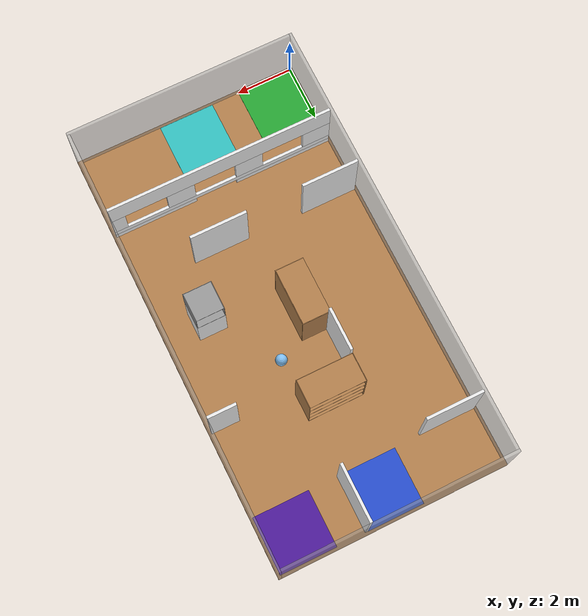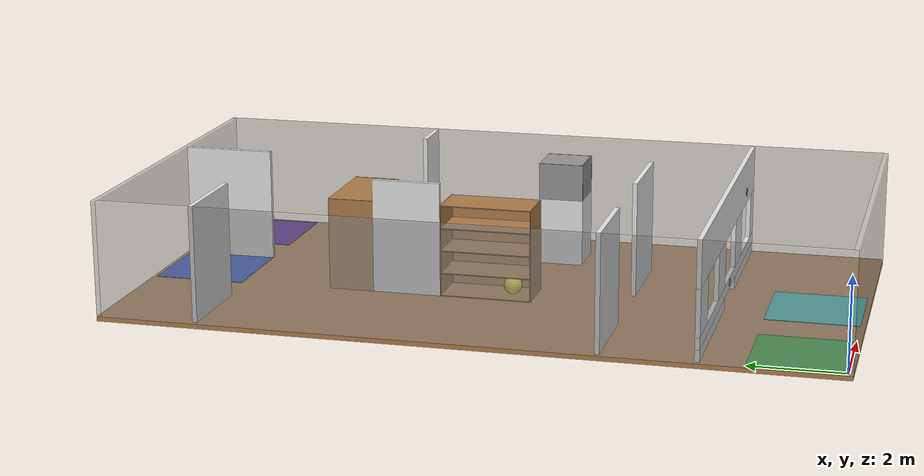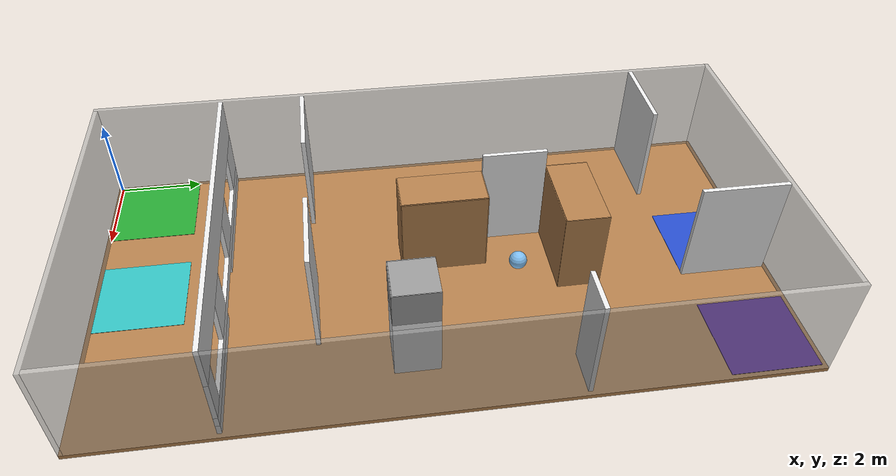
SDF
<sdf version="1.6">
 <world name="default">
  <light name="sun" type="directional">
   <pose>0 0 10 0 -0 0</pose>
   <diffuse>0.8 0.8 0.8 1</diffuse>
   <specular>0.2 0.2 0.2 1</specular>
   <attenuation>
    <range>1000</range>
    <constant>0.9</constant>
    <linear>0.01</linear>
    <quadratic>0.001</quadratic>
   </attenuation>
   <direction>-0.5 0.1 -0.9</direction>
  </light>
  <physics name="default_physics" default="0" type="ode">
   <ode>
    <solver>
     <type>quick</type>
     <iters>10</iters>
     <sor>1.3</sor>
     <use_dynamic_moi_rescaling>0</use_dynamic_moi_rescaling>
    </solver>
    <constraints>
     <cfm>0</cfm>
     <erp>0.2</erp>
     <contact_max_correcting_vel>100</contact_max_correcting_vel>
     <contact_surface_layer>0.001</contact_surface_layer>
    </constraints>
   </ode>
   <max_step_size>0.004</max_step_size>
   <real_time_factor>1</real_time_factor>
   <real_time_update_rate>250</real_time_update_rate>
  </physics>
  <model name="box_1">
   <pose>4.05 -0.05 1.25 0 -0 0</pose>
   <static>1</static>
   <link name="link">
    <collision name="collision"><geometry><box><size>8.1 0.1 2.5</size></box></geometry></collision>
    <visual name="visual">
     <geometry><box><size>8.1 0.1 2.5</size></box></geometry>
     <material>
      <script><name>Gazebo/GreyTransparent</name><uri>file://media/materials/scripts/gazebo.material</uri></script>
     </material>
    </visual>
   </link>
  </model>
  <model name="box_2">
   <pose>8.05 7.8 1.25 0 -0 0</pose>
   <static>1</static>
   <link name="link">
    <collision name="collision"><geometry><box><size>0.1 15.6 2.5</size></box></geometry></collision>
    <visual name="visual">
     <geometry><box><size>0.1 15.6 2.5</size></box></geometry>
     <material>
      <script><name>Gazebo/GreyTransparent</name><uri>file://media/materials/scripts/gazebo.material</uri></script>
     </material>
    </visual>
   </link>
  </model>
  <model name="box_3">
   <pose>3.95 15.55 1.25 0 -0 0</pose>
   <static>1</static>
   <link name="link">
    <collision name="collision"><geometry><box><size>8.1 0.1 2.5</size></box></geometry></collision>
    <visual name="visual">
     <geometry><box><size>8.1 0.1 2.5</size></box></geometry>
     <material>
      <script><name>Gazebo/GreyTransparent</name><uri>file://media/materials/scripts/gazebo.material</uri></script>
     </material>
    </visual>
   </link>
  </model>
  <model name="box_4">
   <pose>-0.05 7.7 1.25 0 -0 0</pose>
   <static>1</static>
   <link name="link">
    <collision name="collision"><geometry><box><size>0.1 15.6 2.5</size></box></geometry></collision>
    <visual name="visual">
     <geometry><box><size>0.1 15.6 2.5</size></box></geometry>
     <material>
      <script><name>Gazebo/GreyTransparent</name><uri>file://media/materials/scripts/gazebo.material</uri></script>
     </material>
    </visual>
   </link>
  </model>
  <model name="box_5">
   <pose>4 7.75 -0.05 0 -0 0</pose>
   <static>1</static>
   <link name="link">
    <collision name="collision"><geometry><box><size>8.2 15.7 0.1</size></box></geometry></collision>
    <visual name="visual">
     <geometry><box><size>8.2 15.7 0.1</size></box></geometry>
     <material>
      <script><name>Gazebo/WoodFloor</name><uri>file://media/materials/scripts/gazebo.material</uri></script>
     </material>
    </visual>
   </link>
  </model>
  <model name="shelf_1">
   <static>1</static>
   <link name="link">
    <collision name="box_1">
     <pose>-0.99 0 1.01 0 -0 0</pose>
     <geometry><box><size>0.02 1 2.02</size></box></geometry>
    </collision>
    <visual name="box_1">
     <pose>-0.99 0 1.01 0 -0 0</pose>
     <geometry><box><size>0.02 1 2.02</size></box></geometry>
     <material>
      <script><name>Gazebo/Wood</name><uri>file://media/materials/scripts/gazebo.material</uri></script>
     </material>
    </visual>
    <collision name="box_2">
     <pose>0.99 0 1.01 0 -0 0</pose>
     <geometry><box><size>0.02 1 2.02</size></box></geometry>
    </collision>
    <visual name="box_2">
     <pose>0.99 0 1.01 0 -0 0</pose>
     <geometry><box><size>0.02 1 2.02</size></box></geometry>
     <material>
      <script><name>Gazebo/Wood</name><uri>file://media/materials/scripts/gazebo.material</uri></script>
     </material>
    </visual>
    <collision name="box_3">
     <pose>0 0.49 1 0 -0 0</pose>
     <geometry><box><size>1.96 0.02 2</size></box></geometry>
    </collision>
    <visual name="box_3">
     <pose>0 0.49 1 0 -0 0</pose>
     <geometry><box><size>1.96 0.02 2</size></box></geometry>
     <material>
      <script><name>Gazebo/Wood</name><uri>file://media/materials/scripts/gazebo.material</uri></script>
     </material>
    </visual>
    <collision name="box_4">
     <pose>0 -0.01 0.01 0 -0 0</pose>
     <geometry><box><size>1.96 0.98 0.02</size></box></geometry>
    </collision>
    <visual name="box_4">
     <pose>0 -0.01 0.01 0 -0 0</pose>
     <geometry><box><size>1.96 0.98 0.02</size></box></geometry>
     <material>
      <script><name>Gazebo/Wood</name><uri>file://media/materials/scripts/gazebo.material</uri></script>
     </material>
    </visual>
    <collision name="box_5">
     <pose>0 -0.01 0.51 0 -0 0</pose>
     <geometry><box><size>1.96 0.98 0.02</size></box></geometry>
    </collision>
    <visual name="box_5">
     <pose>0 -0.01 0.51 0 -0 0</pose>
     <geometry><box><size>1.96 0.98 0.02</size></box></geometry>
     <material>
      <script><name>Gazebo/Wood</name><uri>file://media/materials/scripts/gazebo.material</uri></script>
     </material>
    </visual>
    <collision name="box_6">
     <pose>0 -0.01 1.01 0 -0 0</pose>
     <geometry><box><size>1.96 0.98 0.02</size></box></geometry>
    </collision>
    <visual name="box_6">
     <pose>0 -0.01 1.01 0 -0 0</pose>
     <geometry><box><size>1.96 0.98 0.02</size></box></geometry>
     <material>
      <script><name>Gazebo/Wood</name><uri>file://media/materials/scripts/gazebo.material</uri></script>
     </material>
    </visual>
    <collision name="box_7">
     <pose>0 -0.01 1.51 0 -0 0</pose>
     <geometry><box><size>1.96 0.98 0.02</size></box></geometry>
    </collision>
    <visual name="box_7">
     <pose>0 -0.01 1.51 0 -0 0</pose>
     <geometry><box><size>1.96 0.98 0.02</size></box></geometry>
     <material>
      <script><name>Gazebo/Wood</name><uri>file://media/materials/scripts/gazebo.material</uri></script>
     </material>
    </visual>
    <collision name="box_8">
     <pose>0 -0.01 2.01 0 -0 0</pose>
     <geometry><box><size>1.96 0.98 0.02</size></box></geometry>
    </collision>
    <visual name="box_8">
     <pose>0 -0.01 2.01 0 -0 0</pose>
     <geometry><box><size>1.96 0.98 0.02</size></box></geometry>
     <material>
      <script><name>Gazebo/Wood</name><uri>file://media/materials/scripts/gazebo.material</uri></script>
     </material>
    </visual>
   </link>
   <pose>3.5 8 0 0 0 -1.5708</pose>
  </model>
  <model name="shelf_2">
   <static>1</static>
   <link name="link">
    <collision name="box_1">
     <pose>-0.99 0 1.01 0 -0 0</pose>
     <geometry><box><size>0.02 1 2.02</size></box></geometry>
    </collision>
    <visual name="box_1">
     <pose>-0.99 0 1.01 0 -0 0</pose>
     <geometry><box><size>0.02 1 2.02</size></box></geometry>
     <material>
      <script><name>Gazebo/Wood</name><uri>file://media/materials/scripts/gazebo.material</uri></script>
     </material>
    </visual>
    <collision name="box_2">
     <pose>0.99 0 1.01 0 -0 0</pose>
     <geometry><box><size>0.02 1 2.02</size></box></geometry>
    </collision>
    <visual name="box_2">
     <pose>0.99 0 1.01 0 -0 0</pose>
     <geometry><box><size>0.02 1 2.02</size></box></geometry>
     <material>
      <script><name>Gazebo/Wood</name><uri>file://media/materials/scripts/gazebo.material</uri></script>
     </material>
    </visual>
    <collision name="box_3">
     <pose>0 0.49 1 0 -0 0</pose>
     <geometry><box><size>1.96 0.02 2</size></box></geometry>
    </collision>
    <visual name="box_3">
     <pose>0 0.49 1 0 -0 0</pose>
     <geometry><box><size>1.96 0.02 2</size></box></geometry>
     <material>
      <script><name>Gazebo/Wood</name><uri>file://media/materials/scripts/gazebo.material</uri></script>
     </material>
    </visual>
    <collision name="box_4">
     <pose>0 -0.01 0.01 0 -0 0</pose>
     <geometry><box><size>1.96 0.98 0.02</size></box></geometry>
    </collision>
    <visual name="box_4">
     <pose>0 -0.01 0.01 0 -0 0</pose>
     <geometry><box><size>1.96 0.98 0.02</size></box></geometry>
     <material>
      <script><name>Gazebo/Wood</name><uri>file://media/materials/scripts/gazebo.material</uri></script>
     </material>
    </visual>
    <collision name="box_5">
     <pose>0 -0.01 0.51 0 -0 0</pose>
     <geometry><box><size>1.96 0.98 0.02</size></box></geometry>
    </collision>
    <visual name="box_5">
     <pose>0 -0.01 0.51 0 -0 0</pose>
     <geometry><box><size>1.96 0.98 0.02</size></box></geometry>
     <material>
      <script><name>Gazebo/Wood</name><uri>file://media/materials/scripts/gazebo.material</uri></script>
     </material>
    </visual>
    <collision name="box_6">
     <pose>0 -0.01 1.01 0 -0 0</pose>
     <geometry><box><size>1.96 0.98 0.02</size></box></geometry>
    </collision>
    <visual name="box_6">
     <pose>0 -0.01 1.01 0 -0 0</pose>
     <geometry><box><size>1.96 0.98 0.02</size></box></geometry>
     <material>
      <script><name>Gazebo/Wood</name><uri>file://media/materials/scripts/gazebo.material</uri></script>
     </material>
    </visual>
    <collision name="box_7">
     <pose>0 -0.01 1.51 0 -0 0</pose>
     <geometry><box><size>1.96 0.98 0.02</size></box></geometry>
    </collision>
    <visual name="box_7">
     <pose>0 -0.01 1.51 0 -0 0</pose>
     <geometry><box><size>1.96 0.98 0.02</size></box></geometry>
     <material>
      <script><name>Gazebo/Wood</name><uri>file://media/materials/scripts/gazebo.material</uri></script>
     </material>
    </visual>
    <collision name="box_8">
     <pose>0 -0.01 2.01 0 -0 0</pose>
     <geometry><box><size>1.96 0.98 0.02</size></box></geometry>
    </collision>
    <visual name="box_8">
     <pose>0 -0.01 2.01 0 -0 0</pose>
     <geometry><box><size>1.96 0.98 0.02</size></box></geometry>
     <material>
      <script><name>Gazebo/Wood</name><uri>file://media/materials/scripts/gazebo.material</uri></script>
     </material>
    </visual>
   </link>
   <pose>4 11 0 0 0 -3.14159</pose>
  </model>
  <model name="box_6">
   <pose>1 4.95 1.25 0 -0 0</pose>
   <static>1</static>
   <link name="link">
    <collision name="collision"><geometry><box><size>2 0.1 2.5</size></box></geometry></collision>
    <visual name="visual">
     <geometry><box><size>2 0.1 2.5</size></box></geometry>
     <material>
      <script><name>Gazebo/White</name><uri>file://media/materials/scripts/gazebo.material</uri></script>
     </material>
    </visual>
   </link>
  </model>
  <model name="box_7">
   <pose>5 4.95 1.25 0 -0 0</pose>
   <static>1</static>
   <link name="link">
    <collision name="collision"><geometry><box><size>2 0.1 2.5</size></box></geometry></collision>
    <visual name="visual">
     <geometry><box><size>2 0.1 2.5</size></box></geometry>
     <material>
      <script><name>Gazebo/White</name><uri>file://media/materials/scripts/gazebo.material</uri></script>
     </material>
    </visual>
   </link>
  </model>
  <model name="box_8">
   <pose>3.05 9.75 1.25 0 -0 0</pose>
   <static>1</static>
   <link name="link">
    <collision name="collision"><geometry><box><size>0.1 1.5 2.5</size></box></geometry></collision>
    <visual name="visual">
     <geometry><box><size>0.1 1.5 2.5</size></box></geometry>
     <material>
      <script><name>Gazebo/White</name><uri>file://media/materials/scripts/gazebo.material</uri></script>
     </material>
    </visual>
   </link>
  </model>
  <model name="box_9">
   <pose>1 13.45 1.25 0 -0 0</pose>
   <static>1</static>
   <link name="link">
    <collision name="collision"><geometry><box><size>2 0.1 2.5</size></box></geometry></collision>
    <visual name="visual">
     <geometry><box><size>2 0.1 2.5</size></box></geometry>
     <material>
      <script><name>Gazebo/White</name><uri>file://media/materials/scripts/gazebo.material</uri></script>
     </material>
    </visual>
   </link>
  </model>
  <model name="box_10">
   <pose>7.5 10.45 1.25 0 -0 0</pose>
   <static>1</static>
   <link name="link">
    <collision name="collision"><geometry><box><size>1 0.1 2.5</size></box></geometry></collision>
    <visual name="visual">
     <geometry><box><size>1 0.1 2.5</size></box></geometry>
     <material>
      <script><name>Gazebo/White</name><uri>file://media/materials/scripts/gazebo.material</uri></script>
     </material>
    </visual>
   </link>
  </model>
  <model name="box_11">
   <pose>4.95 14.5 1.25 0 -0 0</pose>
   <static>1</static>
   <link name="link">
    <collision name="collision"><geometry><box><size>0.1 2 2.5</size></box></geometry></collision>
    <visual name="visual">
     <geometry><box><size>0.1 2 2.5</size></box></geometry>
     <material>
      <script><name>Gazebo/White</name><uri>file://media/materials/scripts/gazebo.material</uri></script>
     </material>
    </visual>
   </link>
  </model>
  <model name="box_12">
   <pose>6.5 7 0.75 0 -0 0</pose>
   <static>1</static>
   <link name="link">
    <collision name="collision"><geometry><box><size>1 1 1.5</size></box></geometry></collision>
    <visual name="visual">
     <geometry><box><size>1 1 1.5</size></box></geometry>
     <material>
      <script><name>Gazebo/White</name><uri>file://media/materials/scripts/gazebo.material</uri></script>
     </material>
    </visual>
   </link>
  </model>
  <model name="shelf_3">
   <static>1</static>
   <link name="link">
    <collision name="box_1">
     <pose>-0.49 0 0.41 0 -0 0</pose>
     <geometry><box><size>0.02 1 0.82</size></box></geometry>
    </collision>
    <visual name="box_1">
     <pose>-0.49 0 0.41 0 -0 0</pose>
     <geometry><box><size>0.02 1 0.82</size></box></geometry>
     <material>
      <script><name>Gazebo/Grey</name><uri>file://media/materials/scripts/gazebo.material</uri></script>
     </material>
    </visual>
    <collision name="box_2">
     <pose>0.49 0 0.41 0 -0 0</pose>
     <geometry><box><size>0.02 1 0.82</size></box></geometry>
    </collision>
    <visual name="box_2">
     <pose>0.49 0 0.41 0 -0 0</pose>
     <geometry><box><size>0.02 1 0.82</size></box></geometry>
     <material>
      <script><name>Gazebo/Grey</name><uri>file://media/materials/scripts/gazebo.material</uri></script>
     </material>
    </visual>
    <collision name="box_3">
     <pose>0 0.49 0.4 0 -0 0</pose>
     <geometry><box><size>0.96 0.02 0.8</size></box></geometry>
    </collision>
    <visual name="box_3">
     <pose>0 0.49 0.4 0 -0 0</pose>
     <geometry><box><size>0.96 0.02 0.8</size></box></geometry>
     <material>
      <script><name>Gazebo/Grey</name><uri>file://media/materials/scripts/gazebo.material</uri></script>
     </material>
    </visual>
    <collision name="box_4">
     <pose>0 -0.01 0.01 0 -0 0</pose>
     <geometry><box><size>0.96 0.98 0.02</size></box></geometry>
    </collision>
    <visual name="box_4">
     <pose>0 -0.01 0.01 0 -0 0</pose>
     <geometry><box><size>0.96 0.98 0.02</size></box></geometry>
     <material>
      <script><name>Gazebo/Grey</name><uri>file://media/materials/scripts/gazebo.material</uri></script>
     </material>
    </visual>
    <collision name="box_5">
     <pose>0 -0.01 0.81 0 -0 0</pose>
     <geometry><box><size>0.96 0.98 0.02</size></box></geometry>
    </collision>
    <visual name="box_5">
     <pose>0 -0.01 0.81 0 -0 0</pose>
     <geometry><box><size>0.96 0.98 0.02</size></box></geometry>
     <material>
      <script><name>Gazebo/Grey</name><uri>file://media/materials/scripts/gazebo.material</uri></script>
     </material>
    </visual>
   </link>
   <pose>6.5 7 1.5 0 0 -3.14159</pose>
  </model>
  <model name="box_13">
   <pose>1 1 0.005 0 -0 0</pose>
   <static>1</static>
   <link name="link">
    <collision name="collision"><geometry><box><size>2 2 0.01</size></box></geometry></collision>
    <visual name="visual">
     <geometry><box><size>2 2 0.01</size></box></geometry>
     <material>
      <script><name>Gazebo/Green</name><uri>file://media/materials/scripts/gazebo.material</uri></script>
     </material>
    </visual>
   </link>
  </model>
  <model name="box_14">
   <pose>7 14.5 0.005 0 -0 0</pose>
   <static>1</static>
   <link name="link">
    <collision name="collision"><geometry><box><size>2 2 0.01</size></box></geometry></collision>
    <visual name="visual">
     <geometry><box><size>2 2 0.01</size></box></geometry>
     <material>
      <script><name>Gazebo/Indigo</name><uri>file://media/materials/scripts/gazebo.material</uri></script>
     </material>
    </visual>
   </link>
  </model>
  <model name="box_15">
   <pose>4 2.95 0.375 0 -0 0</pose>
   <static>1</static>
   <link name="link">
    <collision name="collision"><geometry><box><size>8 0.1 0.25</size></box></geometry></collision>
    <visual name="visual">
     <geometry><box><size>8 0.1 0.25</size></box></geometry>
     <material>
      <script><name>Gazebo/White</name><uri>file://media/materials/scripts/gazebo.material</uri></script>
     </material>
    </visual>
   </link>
  </model>
  <model name="box_15_h1">
   <pose>1.75 2.95 0.125 0 -0 0</pose>
   <static>1</static>
   <link name="link">
    <collision name="collision"><geometry><box><size>3.5 0.1 0.25</size></box></geometry></collision>
    <visual name="visual">
     <geometry><box><size>3.5 0.1 0.25</size></box></geometry>
     <material>
      <script><name>Gazebo/White</name><uri>file://media/materials/scripts/gazebo.material</uri></script>
     </material>
    </visual>
   </link>
  </model>
  <model name="box_15_h2">
   <pose>6.5 2.95 0.125 0 -0 0</pose>
   <static>1</static>
   <link name="link">
    <collision name="collision"><geometry><box><size>3 0.1 0.25</size></box></geometry></collision>
    <visual name="visual">
     <geometry><box><size>3 0.1 0.25</size></box></geometry>
     <material>
      <script><name>Gazebo/White</name><uri>file://media/materials/scripts/gazebo.material</uri></script>
     </material>
    </visual>
   </link>
  </model>
  <model name="box_16">
   <pose>4 2.95 2 0 -0 0</pose>
   <static>1</static>
   <link name="link">
    <collision name="collision"><geometry><box><size>8 0.1 1</size></box></geometry></collision>
    <visual name="visual">
     <geometry><box><size>8 0.1 1</size></box></geometry>
     <material>
      <script><name>Gazebo/White</name><uri>file://media/materials/scripts/gazebo.material</uri></script>
     </material>
    </visual>
   </link>
  </model>
  <model name="box_17">
   <pose>0.5 2.95 1 0 -0 0</pose>
   <static>1</static>
   <link name="link">
    <collision name="collision"><geometry><box><size>1 0.1 1</size></box></geometry></collision>
    <visual name="visual">
     <geometry><box><size>1 0.1 1</size></box></geometry>
     <material>
      <script><name>Gazebo/White</name><uri>file://media/materials/scripts/gazebo.material</uri></script>
     </material>
    </visual>
   </link>
  </model>
  <model name="box_18">
   <pose>3 2.95 1 0 -0 0</pose>
   <static>1</static>
   <link name="link">
    <collision name="collision"><geometry><box><size>1 0.1 1</size></box></geometry></collision>
    <visual name="visual">
     <geometry><box><size>1 0.1 1</size></box></geometry>
     <material>
      <script><name>Gazebo/White</name><uri>file://media/materials/scripts/gazebo.material</uri></script>
     </material>
    </visual>
   </link>
  </model>
  <model name="box_19">
   <pose>5.5 2.95 1 0 -0 0</pose>
   <static>1</static>
   <link name="link">
    <collision name="collision"><geometry><box><size>1 0.1 1</size></box></geometry></collision>
    <visual name="visual">
     <geometry><box><size>1 0.1 1</size></box></geometry>
     <material>
      <script><name>Gazebo/White</name><uri>file://media/materials/scripts/gazebo.material</uri></script>
     </material>
    </visual>
   </link>
  </model>
  <model name="box_20">
   <pose>7.75 2.95 1 0 -0 0</pose>
   <static>1</static>
   <link name="link">
    <collision name="collision"><geometry><box><size>0.5 0.1 1</size></box></geometry></collision>
    <visual name="visual">
     <geometry><box><size>0.5 0.1 1</size></box></geometry>
     <material>
      <script><name>Gazebo/White</name><uri>file://media/materials/scripts/gazebo.material</uri></script>
     </material>
    </visual>
   </link>
  </model>
  <model name="cylinder_1">
   <pose>6.75 2.9 1.75 1.5708 -0 0</pose>
   <static>1</static>
   <link name="link">
    <visual name="visual">
     <geometry><cylinder><radius>0.1</radius><length>0.002</length></cylinder></geometry>
     <material>
      <script><name>Gazebo/Red</name><uri>file://media/materials/scripts/gazebo.material</uri></script>
     </material>
    </visual>
   </link>
  </model>
  <model name="cylinder_2">
   <pose>4.25 2.9 0.375 1.5708 -0 0</pose>
   <static>1</static>
   <link name="link">
    <visual name="visual">
     <geometry><cylinder><radius>0.1</radius><length>0.002</length></cylinder></geometry>
     <material>
      <script><name>Gazebo/Red</name><uri>file://media/materials/scripts/gazebo.material</uri></script>
     </material>
    </visual>
   </link>
  </model>
  <model name="box_21">
   <pose>1.75 2.95 1 0 -0 0</pose>
   <static>1</static>
   <link name="link">
    <collision name="collision"><geometry><box><size>1.5 0.1 1</size></box></geometry></collision>
    <visual name="visual">
     <geometry><box><size>1.5 0.1 1</size></box></geometry>
     <material>
      <script><name>Gazebo/Grey</name><uri>file://media/materials/scripts/gazebo.material</uri></script>
     </material>
     <transparency>1</transparency>
    </visual>
   </link>
  </model>
  <model name="box_22">
   <pose>4.25 2.95 1 0 -0 0</pose>
   <static>1</static>
   <link name="link">
    <collision name="collision"><geometry><box><size>1.5 0.1 1</size></box></geometry></collision>
    <visual name="visual">
     <geometry><box><size>1.5 0.1 1</size></box></geometry>
     <material>
      <script><name>Gazebo/Grey</name><uri>file://media/materials/scripts/gazebo.material</uri></script>
     </material>
     <transparency>1</transparency>
    </visual>
   </link>
  </model>
  <model name="sphere_1">
   <pose>6.5 7 1.72 0 -0 0</pose>
   <static>1</static>
   <link name="link">
    <collision name="collision"><geometry><sphere><radius>0.2</radius></sphere></geometry></collision>
    <visual name="visual">
     <geometry><sphere><radius>0.2</radius></sphere></geometry>
     <material>
      <script><name>Gazebo/Red</name><uri>file://media/materials/scripts/gazebo.material</uri></script>
     </material>
    </visual>
   </link>
  </model>
  <model name="sphere_2">
   <pose>3.5 7.5 0.221071 0 -0 0</pose>
   <static>1</static>
   <link name="link">
    <collision name="collision"><geometry><sphere><radius>0.2</radius></sphere></geometry></collision>
    <visual name="visual">
     <geometry><sphere><radius>0.2</radius></sphere></geometry>
     <material>
      <script><name>Gazebo/Yellow</name><uri>file://media/materials/scripts/gazebo.material</uri></script>
     </material>
    </visual>
   </link>
  </model>
  <model name="sphere_3">
   <pose>5 9.5 1 0 -0 0</pose>
   <static>1</static>
   <link name="link">
    <collision name="collision"><geometry><sphere><radius>0.2</radius></sphere></geometry></collision>
    <visual name="visual">
     <geometry><sphere><radius>0.2</radius></sphere></geometry>
     <material>
      <script><name>Gazebo/SkyBlue</name><uri>file://media/materials/scripts/gazebo.material</uri></script>
     </material>
    </visual>
   </link>
  </model>
  <gravity>0 0 -9.8066</gravity>
  <magnetic_field>6e-06 2.3e-05 -4.2e-05</magnetic_field>
  <atmosphere type="adiabatic"/>
  <scene><ambient>0.4 0.4 0.4 1</ambient><background>0.7 0.7 0.7 1</background><shadows>1</shadows></scene>
  <audio><device>default</device></audio>
  <spherical_coordinates>
   <surface_model>EARTH_WGS84</surface_model>
   <latitude_deg>0</latitude_deg>
   <longitude_deg>0</longitude_deg>
   <elevation>0</elevation>
   <heading_deg>0</heading_deg>
  </spherical_coordinates>
  <model name="box_13_clone">
   <pose>4.01134 1.00672 0.005 0 -0 0</pose>
   <static>1</static>
   <link name="link">
    <collision name="collision"><geometry><box><size>2 2 0.01</size></box></geometry></collision>
    <visual name="visual">
     <geometry><box><size>2 2 0.01</size></box></geometry>
     <material>
      <script><name>Gazebo/Turquoise</name><uri>file://media/materials/scripts/gazebo.material</uri></script>
     </material>
    </visual>
   </link>
  </model>
  <model name="box_14_clone">
   <pose>3.9015 14.5071 0.005 0 -0 0</pose>
   <static>1</static>
   <link name="link">
    <collision name="collision"><geometry><box><size>2 2 0.01</size></box></geometry></collision>
    <visual name="visual">
     <geometry><box><size>2 2 0.01</size></box></geometry>
     <material>
      <script><name>Gazebo/Blue</name><uri>file://media/materials/scripts/gazebo.material</uri></script>
     </material>
    </visual>
   </link>
  </model>
 </world>
</sdf>
